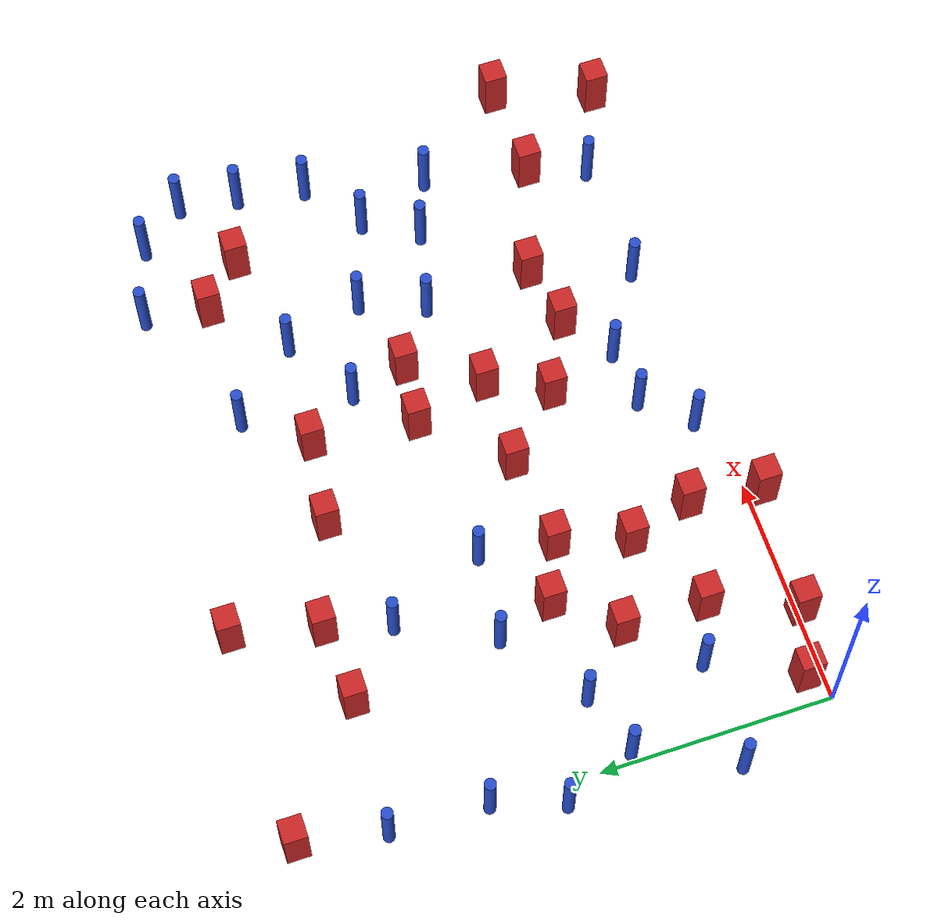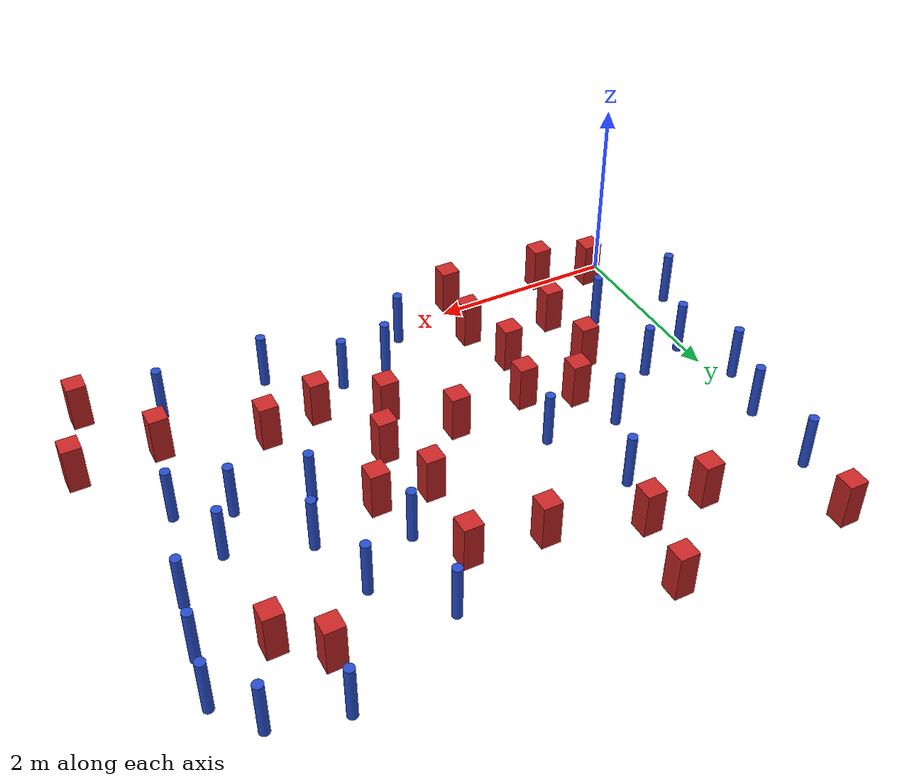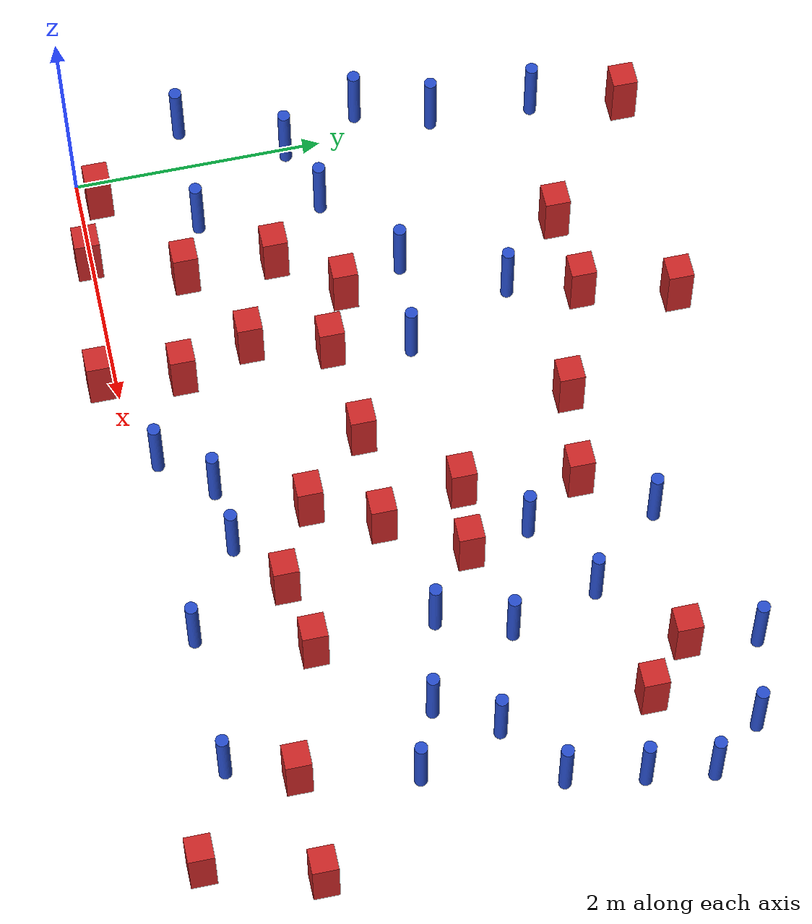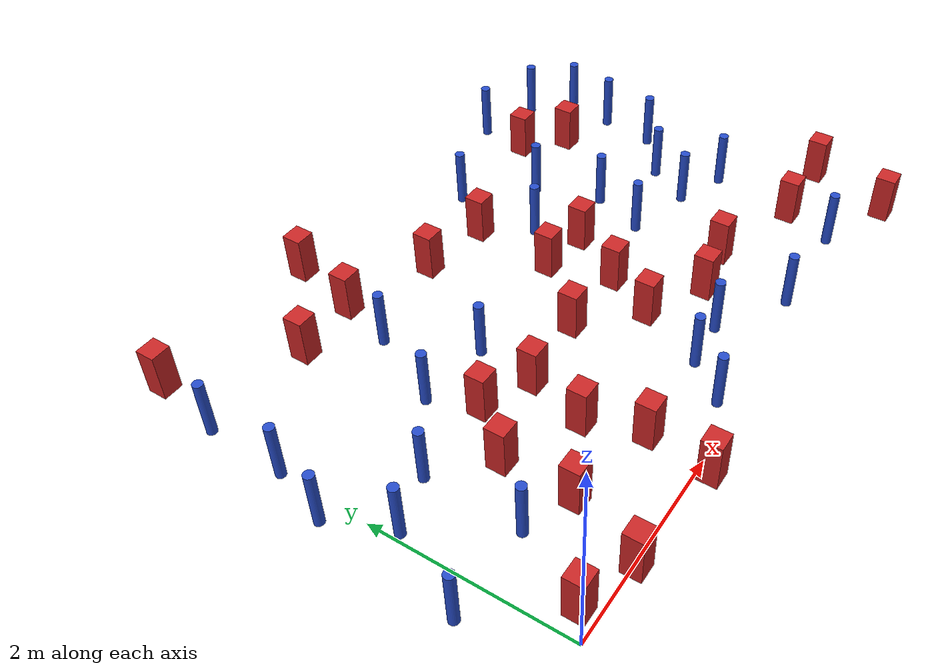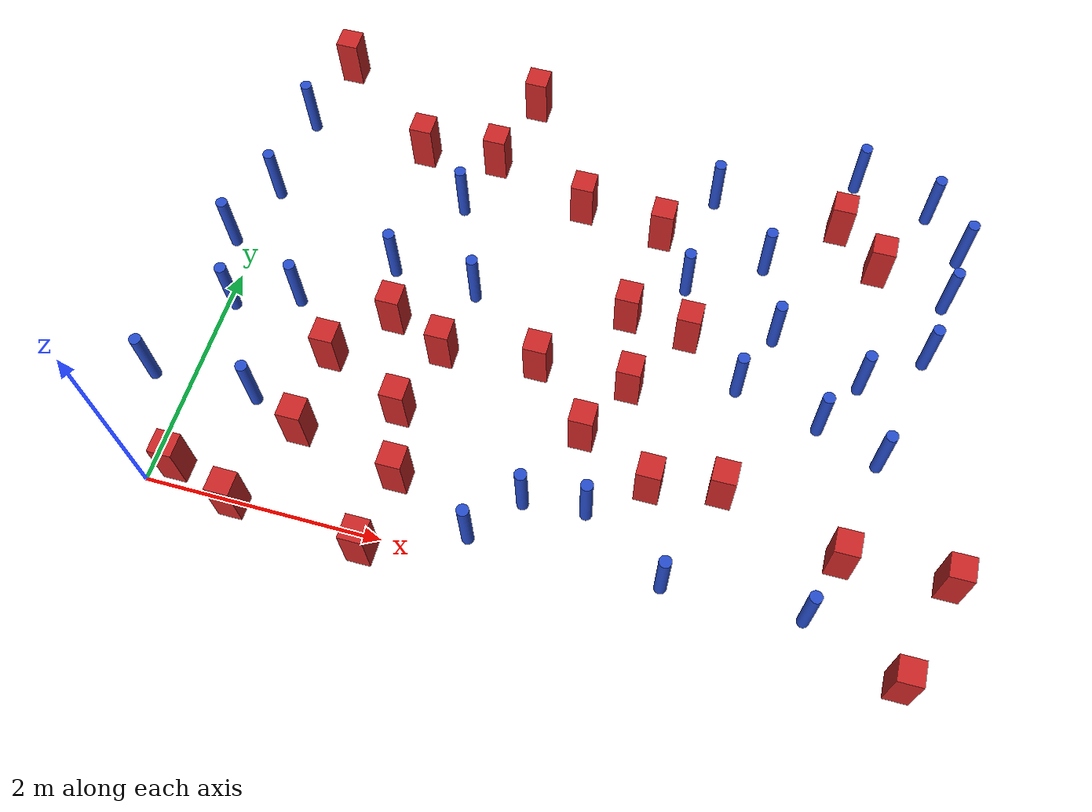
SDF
<sdf version="1.6">
 <model name="dense_59">
  <model name="square_post_obstacle6">
   <static>true</static>
   <pose>2.74779495735 3.42681355464 1.91545236811e-07 -7.35059704564e-06 1.12565212e-07 2.39332434364e-05</pose>
   <link name="link">
    <pose>0 0 0.25 0 -0 0</pose>
    <inertial>
     <mass>100</mass>
     <inertia>
      <ixx>0.166667</ixx>
      <ixy>0</ixy>
      <ixz>0</ixz>
      <iyy>0.166667</iyy>
      <iyz>0</iyz>
      <izz>0.166667</izz>
     </inertia>
    </inertial>
    <collision name="collision"><geometry><box><size>.2 .2 .5</size></box></geometry></collision>
    <visual name="visual">
     <geometry><box><size>.2 .2 .5</size></box></geometry>
     <material>
      <script><name>Gazebo/Red</name><uri>file://media/materials/scripts/gazebo.material</uri></script>
     </material>
    </visual>
   </link>
  </model>
  <model name="square_post_obstacle7">
   <static>true</static>
   <pose>1.96890873145 0.516541553531 1.91545236811e-07 -7.35059704564e-06 1.12565212e-07 2.39332434364e-05</pose>
   <link name="link">
    <pose>0 0 0.25 0 -0 0</pose>
    <inertial>
     <mass>100</mass>
     <inertia>
      <ixx>0.166667</ixx>
      <ixy>0</ixy>
      <ixz>0</ixz>
      <iyy>0.166667</iyy>
      <iyz>0</iyz>
      <izz>0.166667</izz>
     </inertia>
    </inertial>
    <collision name="collision"><geometry><box><size>.2 .2 .5</size></box></geometry></collision>
    <visual name="visual">
     <geometry><box><size>.2 .2 .5</size></box></geometry>
     <material>
      <script><name>Gazebo/Red</name><uri>file://media/materials/scripts/gazebo.material</uri></script>
     </material>
    </visual>
   </link>
  </model>
  <model name="pole_obstacle7">
   <static>true</static>
   <pose>4.42884117087 1.99683691813 7.38925637345e-09 -8.471706928e-08 1.24976765177e-08 -1.74513093012e-07</pose>
   <link name="link">
    <pose>0 0 0.3 0 -0 0</pose>
    <inertial>
     <mass>1</mass>
     <inertia><ixx>0.145833</ixx><ixy>0</ixy><ixz>0</ixz><iyy>0.145833</iyy><iyz>0</iyz><izz>0.125</izz></inertia>
    </inertial>
    <collision name="collision">
     <geometry><cylinder><radius>0.05</radius><length>.6</length></cylinder></geometry>
    </collision>
    <visual name="visual">
     <geometry><cylinder><radius>0.05</radius><length>.6</length></cylinder></geometry>
     <material>
      <script><name>Gazebo/Blue</name><uri>file://media/materials/scripts/gazebo.material</uri></script>
     </material>
    </visual>
   </link>
  </model>
  <model name="pole_obstacle9">
   <static>true</static>
   <pose>1.30406484558 2.3932725286 7.38925637345e-09 -8.47170692799e-08 1.24976765053e-08 -1.74513093017e-07</pose>
   <link name="link">
    <pose>0 0 0.3 0 -0 0</pose>
    <inertial>
     <mass>1</mass>
     <inertia><ixx>0.145833</ixx><ixy>0</ixy><ixz>0</ixz><iyy>0.145833</iyy><iyz>0</iyz><izz>0.125</izz></inertia>
    </inertial>
    <collision name="collision">
     <geometry><cylinder><radius>0.05</radius><length>.6</length></cylinder></geometry>
    </collision>
    <visual name="visual">
     <geometry><cylinder><radius>0.05</radius><length>.6</length></cylinder></geometry>
     <material>
      <script><name>Gazebo/Blue</name><uri>file://media/materials/scripts/gazebo.material</uri></script>
     </material>
    </visual>
   </link>
  </model>
  <model name="square_post_obstacle18">
   <static>true</static>
   <pose>4.48623797648 1.04986090024 1.91545236811e-07 -7.35059704564e-06 1.12565212e-07 2.39332434364e-05</pose>
   <link name="link">
    <pose>0 0 0.25 0 -0 0</pose>
    <inertial>
     <mass>100</mass>
     <inertia>
      <ixx>0.166667</ixx>
      <ixy>0</ixy>
      <ixz>0</ixz>
      <iyy>0.166667</iyy>
      <iyz>0</iyz>
      <izz>0.166667</izz>
     </inertia>
    </inertial>
    <collision name="collision"><geometry><box><size>.2 .2 .5</size></box></geometry></collision>
    <visual name="visual">
     <geometry><box><size>.2 .2 .5</size></box></geometry>
     <material>
      <script><name>Gazebo/Red</name><uri>file://media/materials/scripts/gazebo.material</uri></script>
     </material>
    </visual>
   </link>
  </model>
  <model name="pole_obstacle10">
   <static>true</static>
   <pose>2.98692102486 0.5763629176 7.38925637345e-09 -8.471706928e-08 1.24976765177e-08 -1.74513093012e-07</pose>
   <link name="link">
    <pose>0 0 0.3 0 -0 0</pose>
    <inertial>
     <mass>1</mass>
     <inertia><ixx>0.145833</ixx><ixy>0</ixy><ixz>0</ixz><iyy>0.145833</iyy><iyz>0</iyz><izz>0.125</izz></inertia>
    </inertial>
    <collision name="collision">
     <geometry><cylinder><radius>0.05</radius><length>.6</length></cylinder></geometry>
    </collision>
    <visual name="visual">
     <geometry><cylinder><radius>0.05</radius><length>.6</length></cylinder></geometry>
     <material>
      <script><name>Gazebo/Blue</name><uri>file://media/materials/scripts/gazebo.material</uri></script>
     </material>
    </visual>
   </link>
  </model>
  <model name="square_post_obstacle21">
   <static>true</static>
   <pose>6.04395570483 -0.102435734392 1.91545236811e-07 -7.35059704564e-06 1.12565212e-07 2.39332434364e-05</pose>
   <link name="link">
    <pose>0 0 0.25 0 -0 0</pose>
    <inertial>
     <mass>100</mass>
     <inertia>
      <ixx>0.166667</ixx>
      <ixy>0</ixy>
      <ixz>0</ixz>
      <iyy>0.166667</iyy>
      <iyz>0</iyz>
      <izz>0.166667</izz>
     </inertia>
    </inertial>
    <collision name="collision"><geometry><box><size>.2 .2 .5</size></box></geometry></collision>
    <visual name="visual">
     <geometry><box><size>.2 .2 .5</size></box></geometry>
     <material>
      <script><name>Gazebo/Red</name><uri>file://media/materials/scripts/gazebo.material</uri></script>
     </material>
    </visual>
   </link>
  </model>
  <model name="pole_obstacle19">
   <static>true</static>
   <pose>5.0812405203 4.34473684918 7.38925637345e-09 -8.47170692796e-08 1.24976764786e-08 -1.74513093032e-07</pose>
   <link name="link">
    <pose>0 0 0.3 0 -0 0</pose>
    <inertial>
     <mass>1</mass>
     <inertia><ixx>0.145833</ixx><ixy>0</ixy><ixz>0</ixz><iyy>0.145833</iyy><iyz>0</iyz><izz>0.125</izz></inertia>
    </inertial>
    <collision name="collision">
     <geometry><cylinder><radius>0.05</radius><length>.6</length></cylinder></geometry>
    </collision>
    <visual name="visual">
     <geometry><cylinder><radius>0.05</radius><length>.6</length></cylinder></geometry>
     <material>
      <script><name>Gazebo/Blue</name><uri>file://media/materials/scripts/gazebo.material</uri></script>
     </material>
    </visual>
   </link>
  </model>
  <model name="square_post_obstacle29">
   <static>true</static>
   <pose>1.07501174103 1.42228093594 1.91545236811e-07 -7.35059704564e-06 1.12565212e-07 2.39332434364e-05</pose>
   <link name="link">
    <pose>0 0 0.25 0 -0 0</pose>
    <inertial>
     <mass>100</mass>
     <inertia>
      <ixx>0.166667</ixx>
      <ixy>0</ixy>
      <ixz>0</ixz>
      <iyy>0.166667</iyy>
      <iyz>0</iyz>
      <izz>0.166667</izz>
     </inertia>
    </inertial>
    <collision name="collision"><geometry><box><size>.2 .2 .5</size></box></geometry></collision>
    <visual name="visual">
     <geometry><box><size>.2 .2 .5</size></box></geometry>
     <material>
      <script><name>Gazebo/Red</name><uri>file://media/materials/scripts/gazebo.material</uri></script>
     </material>
    </visual>
   </link>
  </model>
  <model name="square_post_obstacle30">
   <static>true</static>
   <pose>5.47710392444 0.726197041636 1.91545236811e-07 -7.35059704564e-06 1.12565212e-07 2.39332434364e-05</pose>
   <link name="link">
    <pose>0 0 0.25 0 -0 0</pose>
    <inertial>
     <mass>100</mass>
     <inertia>
      <ixx>0.166667</ixx>
      <ixy>0</ixy>
      <ixz>0</ixz>
      <iyy>0.166667</iyy>
      <iyz>0</iyz>
      <izz>0.166667</izz>
     </inertia>
    </inertial>
    <collision name="collision"><geometry><box><size>.2 .2 .5</size></box></geometry></collision>
    <visual name="visual">
     <geometry><box><size>.2 .2 .5</size></box></geometry>
     <material>
      <script><name>Gazebo/Red</name><uri>file://media/materials/scripts/gazebo.material</uri></script>
     </material>
    </visual>
   </link>
  </model>
  <model name="pole_obstacle23">
   <static>true</static>
   <pose>3.81328017638 2.8599224622 7.38925637345e-09 -8.47170692798e-08 1.24976764939e-08 -1.74513093025e-07</pose>
   <link name="link">
    <pose>0 0 0.3 0 -0 0</pose>
    <inertial>
     <mass>1</mass>
     <inertia><ixx>0.145833</ixx><ixy>0</ixy><ixz>0</ixz><iyy>0.145833</iyy><iyz>0</iyz><izz>0.125</izz></inertia>
    </inertial>
    <collision name="collision">
     <geometry><cylinder><radius>0.05</radius><length>.6</length></cylinder></geometry>
    </collision>
    <visual name="visual">
     <geometry><cylinder><radius>0.05</radius><length>.6</length></cylinder></geometry>
     <material>
      <script><name>Gazebo/Blue</name><uri>file://media/materials/scripts/gazebo.material</uri></script>
     </material>
    </visual>
   </link>
  </model>
  <model name="pole_obstacle36">
   <static>true</static>
   <pose>2.65133265014 0.18968282143 7.38925637345e-09 -8.47170692801e-08 1.24976765195e-08 -1.74513093011e-07</pose>
   <link name="link">
    <pose>0 0 0.3 0 -0 0</pose>
    <inertial>
     <mass>1</mass>
     <inertia><ixx>0.145833</ixx><ixy>0</ixy><ixz>0</ixz><iyy>0.145833</iyy><iyz>0</iyz><izz>0.125</izz></inertia>
    </inertial>
    <collision name="collision">
     <geometry><cylinder><radius>0.05</radius><length>.6</length></cylinder></geometry>
    </collision>
    <visual name="visual">
     <geometry><cylinder><radius>0.05</radius><length>.6</length></cylinder></geometry>
     <material>
      <script><name>Gazebo/Blue</name><uri>file://media/materials/scripts/gazebo.material</uri></script>
     </material>
    </visual>
   </link>
  </model>
  <model name="pole_obstacle40">
   <static>true</static>
   <pose>2.06021648572 2.32384527895 7.38925637345e-09 -8.47170692798e-08 1.24976764939e-08 -1.74513093025e-07</pose>
   <link name="link">
    <pose>0 0 0.3 0 -0 0</pose>
    <inertial>
     <mass>1</mass>
     <inertia><ixx>0.145833</ixx><ixy>0</ixy><ixz>0</ixz><iyy>0.145833</iyy><iyz>0</iyz><izz>0.125</izz></inertia>
    </inertial>
    <collision name="collision">
     <geometry><cylinder><radius>0.05</radius><length>.6</length></cylinder></geometry>
    </collision>
    <visual name="visual">
     <geometry><cylinder><radius>0.05</radius><length>.6</length></cylinder></geometry>
     <material>
      <script><name>Gazebo/Blue</name><uri>file://media/materials/scripts/gazebo.material</uri></script>
     </material>
    </visual>
   </link>
  </model>
  <model name="square_post_obstacle50">
   <static>true</static>
   <pose>0.781725389976 -0.02594043501 1.91545236811e-07 -7.35059704564e-06 1.12565212e-07 2.39332434364e-05</pose>
   <link name="link">
    <pose>0 0 0.25 0 -0 0</pose>
    <inertial>
     <mass>100</mass>
     <inertia>
      <ixx>0.166667</ixx>
      <ixy>0</ixy>
      <ixz>0</ixz>
      <iyy>0.166667</iyy>
      <iyz>0</iyz>
      <izz>0.166667</izz>
     </inertia>
    </inertial>
    <collision name="collision"><geometry><box><size>.2 .2 .5</size></box></geometry></collision>
    <visual name="visual">
     <geometry><box><size>.2 .2 .5</size></box></geometry>
     <material>
      <script><name>Gazebo/Red</name><uri>file://media/materials/scripts/gazebo.material</uri></script>
     </material>
    </visual>
   </link>
  </model>
  <model name="pole_obstacle52">
   <static>true</static>
   <pose>5.65788533901 1.61920491972 7.38925637345e-09 -8.471706928e-08 1.24976765134e-08 -1.74513093015e-07</pose>
   <link name="link">
    <pose>0 0 0.3 0 -0 0</pose>
    <inertial>
     <mass>1</mass>
     <inertia><ixx>0.145833</ixx><ixy>0</ixy><ixz>0</ixz><iyy>0.145833</iyy><iyz>0</iyz><izz>0.125</izz></inertia>
    </inertial>
    <collision name="collision">
     <geometry><cylinder><radius>0.05</radius><length>.6</length></cylinder></geometry>
    </collision>
    <visual name="visual">
     <geometry><cylinder><radius>0.05</radius><length>.6</length></cylinder></geometry>
     <material>
      <script><name>Gazebo/Blue</name><uri>file://media/materials/scripts/gazebo.material</uri></script>
     </material>
    </visual>
   </link>
  </model>
  <model name="pole_obstacle53">
   <static>true</static>
   <pose>0.590451067668 0.897449104899 7.38925637345e-09 -8.47170692799e-08 1.24976765008e-08 -1.7451309302e-07</pose>
   <link name="link">
    <pose>0 0 0.3 0 -0 0</pose>
    <inertial>
     <mass>1</mass>
     <inertia><ixx>0.145833</ixx><ixy>0</ixy><ixz>0</ixz><iyy>0.145833</iyy><iyz>0</iyz><izz>0.125</izz></inertia>
    </inertial>
    <collision name="collision">
     <geometry><cylinder><radius>0.05</radius><length>.6</length></cylinder></geometry>
    </collision>
    <visual name="visual">
     <geometry><cylinder><radius>0.05</radius><length>.6</length></cylinder></geometry>
     <material>
      <script><name>Gazebo/Blue</name><uri>file://media/materials/scripts/gazebo.material</uri></script>
     </material>
    </visual>
   </link>
  </model>
  <model name="square_post_obstacle60">
   <static>true</static>
   <pose>3.56521192778 1.76793558898 1.91545236811e-07 -7.35059704564e-06 1.12565212e-07 2.39332434364e-05</pose>
   <link name="link">
    <pose>0 0 0.25 0 -0 0</pose>
    <inertial>
     <mass>100</mass>
     <inertia>
      <ixx>0.166667</ixx>
      <ixy>0</ixy>
      <ixz>0</ixz>
      <iyy>0.166667</iyy>
      <iyz>0</iyz>
      <izz>0.166667</izz>
     </inertia>
    </inertial>
    <collision name="collision"><geometry><box><size>.2 .2 .5</size></box></geometry></collision>
    <visual name="visual">
     <geometry><box><size>.2 .2 .5</size></box></geometry>
     <material>
      <script><name>Gazebo/Red</name><uri>file://media/materials/scripts/gazebo.material</uri></script>
     </material>
    </visual>
   </link>
  </model>
  <model name="square_post_obstacle73">
   <static>true</static>
   <pose>2.7805694358 1.77309273545 1.91545236811e-07 -7.35059704564e-06 1.12565212e-07 2.39332434364e-05</pose>
   <link name="link">
    <pose>0 0 0.25 0 -0 0</pose>
    <inertial>
     <mass>100</mass>
     <inertia>
      <ixx>0.166667</ixx>
      <ixy>0</ixy>
      <ixz>0</ixz>
      <iyy>0.166667</iyy>
      <iyz>0</iyz>
      <izz>0.166667</izz>
     </inertia>
    </inertial>
    <collision name="collision"><geometry><box><size>.2 .2 .5</size></box></geometry></collision>
    <visual name="visual">
     <geometry><box><size>.2 .2 .5</size></box></geometry>
     <material>
      <script><name>Gazebo/Red</name><uri>file://media/materials/scripts/gazebo.material</uri></script>
     </material>
    </visual>
   </link>
  </model>
  <model name="pole_obstacle69">
   <static>true</static>
   <pose>4.64017804551 2.5516675536 7.38925637345e-09 -8.47170692798e-08 1.24976764937e-08 -1.74513093023e-07</pose>
   <link name="link">
    <pose>0 0 0.3 0 -0 0</pose>
    <inertial>
     <mass>1</mass>
     <inertia><ixx>0.145833</ixx><ixy>0</ixy><ixz>0</ixz><iyy>0.145833</iyy><iyz>0</iyz><izz>0.125</izz></inertia>
    </inertial>
    <collision name="collision">
     <geometry><cylinder><radius>0.05</radius><length>.6</length></cylinder></geometry>
    </collision>
    <visual name="visual">
     <geometry><cylinder><radius>0.05</radius><length>.6</length></cylinder></geometry>
     <material>
      <script><name>Gazebo/Blue</name><uri>file://media/materials/scripts/gazebo.material</uri></script>
     </material>
    </visual>
   </link>
  </model>
  <model name="pole_obstacle75">
   <static>true</static>
   <pose>5.13959863347 1.82079990731 7.38925637345e-09 -8.471706928e-08 1.24976765134e-08 -1.74513093015e-07</pose>
   <link name="link">
    <pose>0 0 0.3 0 -0 0</pose>
    <inertial>
     <mass>1</mass>
     <inertia><ixx>0.145833</ixx><ixy>0</ixy><ixz>0</ixz><iyy>0.145833</iyy><iyz>0</iyz><izz>0.125</izz></inertia>
    </inertial>
    <collision name="collision">
     <geometry><cylinder><radius>0.05</radius><length>.6</length></cylinder></geometry>
    </collision>
    <visual name="visual">
     <geometry><cylinder><radius>0.05</radius><length>.6</length></cylinder></geometry>
     <material>
      <script><name>Gazebo/Blue</name><uri>file://media/materials/scripts/gazebo.material</uri></script>
     </material>
    </visual>
   </link>
  </model>
  <model name="pole_obstacle79">
   <static>true</static>
   <pose>5.90344295679 2.65675222108 7.38925637345e-09 -8.47170692798e-08 1.24976764937e-08 -1.74513093023e-07</pose>
   <link name="link">
    <pose>0 0 0.3 0 -0 0</pose>
    <inertial>
     <mass>1</mass>
     <inertia><ixx>0.145833</ixx><ixy>0</ixy><ixz>0</ixz><iyy>0.145833</iyy><iyz>0</iyz><izz>0.125</izz></inertia>
    </inertial>
    <collision name="collision">
     <geometry><cylinder><radius>0.05</radius><length>.6</length></cylinder></geometry>
    </collision>
    <visual name="visual">
     <geometry><cylinder><radius>0.05</radius><length>.6</length></cylinder></geometry>
     <material>
      <script><name>Gazebo/Blue</name><uri>file://media/materials/scripts/gazebo.material</uri></script>
     </material>
    </visual>
   </link>
  </model>
  <model name="square_post_obstacle84">
   <static>true</static>
   <pose>3.30220605292 1.25213418225 1.91545236811e-07 -7.35059704564e-06 1.12565212e-07 2.39332434364e-05</pose>
   <link name="link">
    <pose>0 0 0.25 0 -0 0</pose>
    <inertial>
     <mass>100</mass>
     <inertia>
      <ixx>0.166667</ixx>
      <ixy>0</ixy>
      <ixz>0</ixz>
      <iyy>0.166667</iyy>
      <iyz>0</iyz>
      <izz>0.166667</izz>
     </inertia>
    </inertial>
    <collision name="collision"><geometry><box><size>.2 .2 .5</size></box></geometry></collision>
    <visual name="visual">
     <geometry><box><size>.2 .2 .5</size></box></geometry>
     <material>
      <script><name>Gazebo/Red</name><uri>file://media/materials/scripts/gazebo.material</uri></script>
     </material>
    </visual>
   </link>
  </model>
  <model name="pole_obstacle98">
   <static>true</static>
   <pose>-0.325933430519 0.903424053404 7.38925637345e-09 -8.47170692799e-08 1.24976765033e-08 -1.74513093019e-07</pose>
   <link name="link">
    <pose>0 0 0.3 0 -0 0</pose>
    <inertial>
     <mass>1</mass>
     <inertia><ixx>0.145833</ixx><ixy>0</ixy><ixz>0</ixz><iyy>0.145833</iyy><iyz>0</iyz><izz>0.125</izz></inertia>
    </inertial>
    <collision name="collision">
     <geometry><cylinder><radius>0.05</radius><length>.6</length></cylinder></geometry>
    </collision>
    <visual name="visual">
     <geometry><cylinder><radius>0.05</radius><length>.6</length></cylinder></geometry>
     <material>
      <script><name>Gazebo/Blue</name><uri>file://media/materials/scripts/gazebo.material</uri></script>
     </material>
    </visual>
   </link>
  </model>
  <model name="pole_obstacle100">
   <static>true</static>
   <pose>3.87284101218 3.83542529778 7.38925637345e-09 -8.47170692798e-08 1.24976764939e-08 -1.74513093025e-07</pose>
   <link name="link">
    <pose>0 0 0.3 0 -0 0</pose>
    <inertial>
     <mass>1</mass>
     <inertia><ixx>0.145833</ixx><ixy>0</ixy><ixz>0</ixz><iyy>0.145833</iyy><iyz>0</iyz><izz>0.125</izz></inertia>
    </inertial>
    <collision name="collision">
     <geometry><cylinder><radius>0.05</radius><length>.6</length></cylinder></geometry>
    </collision>
    <visual name="visual">
     <geometry><cylinder><radius>0.05</radius><length>.6</length></cylinder></geometry>
     <material>
      <script><name>Gazebo/Blue</name><uri>file://media/materials/scripts/gazebo.material</uri></script>
     </material>
    </visual>
   </link>
  </model>
  <model name="square_post_obstacle92">
   <static>true</static>
   <pose>1.85218060831 3.73177177197 1.91545236811e-07 -7.35059704564e-06 1.12565212e-07 2.39332434364e-05</pose>
   <link name="link">
    <pose>0 0 0.25 0 -0 0</pose>
    <inertial>
     <mass>100</mass>
     <inertia>
      <ixx>0.166667</ixx>
      <ixy>0</ixy>
      <ixz>0</ixz>
      <iyy>0.166667</iyy>
      <iyz>0</iyz>
      <izz>0.166667</izz>
     </inertia>
    </inertial>
    <collision name="collision"><geometry><box><size>.2 .2 .5</size></box></geometry></collision>
    <visual name="visual">
     <geometry><box><size>.2 .2 .5</size></box></geometry>
     <material>
      <script><name>Gazebo/Red</name><uri>file://media/materials/scripts/gazebo.material</uri></script>
     </material>
    </visual>
   </link>
  </model>
  <model name="pole_obstacle108">
   <static>true</static>
   <pose>0.60476029904 1.88756414676 7.38925637345e-09 -8.47170692799e-08 1.24976765033e-08 -1.7451309302e-07</pose>
   <link name="link">
    <pose>0 0 0.3 0 -0 0</pose>
    <inertial>
     <mass>1</mass>
     <inertia><ixx>0.145833</ixx><ixy>0</ixy><ixz>0</ixz><iyy>0.145833</iyy><iyz>0</iyz><izz>0.125</izz></inertia>
    </inertial>
    <collision name="collision">
     <geometry><cylinder><radius>0.05</radius><length>.6</length></cylinder></geometry>
    </collision>
    <visual name="visual">
     <geometry><cylinder><radius>0.05</radius><length>.6</length></cylinder></geometry>
     <material>
      <script><name>Gazebo/Blue</name><uri>file://media/materials/scripts/gazebo.material</uri></script>
     </material>
    </visual>
   </link>
  </model>
  <model name="square_post_obstacle96">
   <static>true</static>
   <pose>5.00298688856 3.79150272132 1.91545236811e-07 -7.35059704564e-06 1.12565212e-07 2.39332434364e-05</pose>
   <link name="link">
    <pose>0 0 0.25 0 -0 0</pose>
    <inertial>
     <mass>100</mass>
     <inertia>
      <ixx>0.166667</ixx>
      <ixy>0</ixy>
      <ixz>0</ixz>
      <iyy>0.166667</iyy>
      <iyz>0</iyz>
      <izz>0.166667</izz>
     </inertia>
    </inertial>
    <collision name="collision"><geometry><box><size>.2 .2 .5</size></box></geometry></collision>
    <visual name="visual">
     <geometry><box><size>.2 .2 .5</size></box></geometry>
     <material>
      <script><name>Gazebo/Red</name><uri>file://media/materials/scripts/gazebo.material</uri></script>
     </material>
    </visual>
   </link>
  </model>
  <model name="square_post_obstacle101">
   <static>true</static>
   <pose>0.230453771746 0.156098682803 1.91545236811e-07 -7.35059704564e-06 1.12565212e-07 2.39332434364e-05</pose>
   <link name="link">
    <pose>0 0 0.25 0 -0 0</pose>
    <inertial>
     <mass>100</mass>
     <inertia>
      <ixx>0.166667</ixx>
      <ixy>0</ixy>
      <ixz>0</ixz>
      <iyy>0.166667</iyy>
      <iyz>0</iyz>
      <izz>0.166667</izz>
     </inertia>
    </inertial>
    <collision name="collision"><geometry><box><size>.2 .2 .5</size></box></geometry></collision>
    <visual name="visual">
     <geometry><box><size>.2 .2 .5</size></box></geometry>
     <material>
      <script><name>Gazebo/Red</name><uri>file://media/materials/scripts/gazebo.material</uri></script>
     </material>
    </visual>
   </link>
  </model>
  <model name="pole_obstacle118">
   <static>true</static>
   <pose>0.0646321608904 1.71178864233 7.38925637345e-09 -8.471706928e-08 1.24976765024e-08 -1.7451309302e-07</pose>
   <link name="link">
    <pose>0 0 0.3 0 -0 0</pose>
    <inertial>
     <mass>1</mass>
     <inertia><ixx>0.145833</ixx><ixy>0</ixy><ixz>0</ixz><iyy>0.145833</iyy><iyz>0</iyz><izz>0.125</izz></inertia>
    </inertial>
    <collision name="collision">
     <geometry><cylinder><radius>0.05</radius><length>.6</length></cylinder></geometry>
    </collision>
    <visual name="visual">
     <geometry><cylinder><radius>0.05</radius><length>.6</length></cylinder></geometry>
     <material>
      <script><name>Gazebo/Blue</name><uri>file://media/materials/scripts/gazebo.material</uri></script>
     </material>
    </visual>
   </link>
  </model>
  <model name="square_post_obstacle111">
   <static>true</static>
   <pose>3.49053614567 3.32802907171 1.91545236811e-07 -7.35059704564e-06 1.12565212e-07 2.39332434364e-05</pose>
   <link name="link">
    <pose>0 0 0.25 0 -0 0</pose>
    <inertial>
     <mass>100</mass>
     <inertia>
      <ixx>0.166667</ixx>
      <ixy>0</ixy>
      <ixz>0</ixz>
      <iyy>0.166667</iyy>
      <iyz>0</iyz>
      <izz>0.166667</izz>
     </inertia>
    </inertial>
    <collision name="collision"><geometry><box><size>.2 .2 .5</size></box></geometry></collision>
    <visual name="visual">
     <geometry><box><size>.2 .2 .5</size></box></geometry>
     <material>
      <script><name>Gazebo/Red</name><uri>file://media/materials/scripts/gazebo.material</uri></script>
     </material>
    </visual>
   </link>
  </model>
  <model name="pole_obstacle126">
   <static>true</static>
   <pose>-0.185885994054 2.33326420951 7.38925637345e-09 -8.471706928e-08 1.2497676511e-08 -1.74513093013e-07</pose>
   <link name="link">
    <pose>0 0 0.3 0 -0 0</pose>
    <inertial>
     <mass>1</mass>
     <inertia><ixx>0.145833</ixx><ixy>0</ixy><ixz>0</ixz><iyy>0.145833</iyy><iyz>0</iyz><izz>0.125</izz></inertia>
    </inertial>
    <collision name="collision">
     <geometry><cylinder><radius>0.05</radius><length>.6</length></cylinder></geometry>
    </collision>
    <visual name="visual">
     <geometry><cylinder><radius>0.05</radius><length>.6</length></cylinder></geometry>
     <material>
      <script><name>Gazebo/Blue</name><uri>file://media/materials/scripts/gazebo.material</uri></script>
     </material>
    </visual>
   </link>
  </model>
  <model name="pole_obstacle132">
   <static>true</static>
   <pose>5.40926353167 2.27947221301 7.38925637345e-09 -8.47170692798e-08 1.24976764937e-08 -1.74513093023e-07</pose>
   <link name="link">
    <pose>0 0 0.3 0 -0 0</pose>
    <inertial>
     <mass>1</mass>
     <inertia><ixx>0.145833</ixx><ixy>0</ixy><ixz>0</ixz><iyy>0.145833</iyy><iyz>0</iyz><izz>0.125</izz></inertia>
    </inertial>
    <collision name="collision">
     <geometry><cylinder><radius>0.05</radius><length>.6</length></cylinder></geometry>
    </collision>
    <visual name="visual">
     <geometry><cylinder><radius>0.05</radius><length>.6</length></cylinder></geometry>
     <material>
      <script><name>Gazebo/Blue</name><uri>file://media/materials/scripts/gazebo.material</uri></script>
     </material>
    </visual>
   </link>
  </model>
  <model name="square_post_obstacle126">
   <static>true</static>
   <pose>5.38953754324 3.43928572763 1.91545236811e-07 -7.35059704564e-06 1.12565212e-07 2.39332434364e-05</pose>
   <link name="link">
    <pose>0 0 0.25 0 -0 0</pose>
    <inertial>
     <mass>100</mass>
     <inertia>
      <ixx>0.166667</ixx>
      <ixy>0</ixy>
      <ixz>0</ixz>
      <iyy>0.166667</iyy>
      <iyz>0</iyz>
      <izz>0.166667</izz>
     </inertia>
    </inertial>
    <collision name="collision"><geometry><box><size>.2 .2 .5</size></box></geometry></collision>
    <visual name="visual">
     <geometry><box><size>.2 .2 .5</size></box></geometry>
     <material>
      <script><name>Gazebo/Red</name><uri>file://media/materials/scripts/gazebo.material</uri></script>
     </material>
    </visual>
   </link>
  </model>
  <model name="pole_obstacle143">
   <static>true</static>
   <pose>0.00714552020065 2.92301817739 7.38925637345e-09 -8.47170692792e-08 1.24976764387e-08 -1.74513093042e-07</pose>
   <link name="link">
    <pose>0 0 0.3 0 -0 0</pose>
    <inertial>
     <mass>1</mass>
     <inertia><ixx>0.145833</ixx><ixy>0</ixy><ixz>0</ixz><iyy>0.145833</iyy><iyz>0</iyz><izz>0.125</izz></inertia>
    </inertial>
    <collision name="collision">
     <geometry><cylinder><radius>0.05</radius><length>.6</length></cylinder></geometry>
    </collision>
    <visual name="visual">
     <geometry><cylinder><radius>0.05</radius><length>.6</length></cylinder></geometry>
     <material>
      <script><name>Gazebo/Blue</name><uri>file://media/materials/scripts/gazebo.material</uri></script>
     </material>
    </visual>
   </link>
  </model>
  <model name="pole_obstacle144">
   <static>true</static>
   <pose>6.00311860051 3.24856825847 7.38925637345e-09 -8.47170692798e-08 1.24976764937e-08 -1.74513093023e-07</pose>
   <link name="link">
    <pose>0 0 0.3 0 -0 0</pose>
    <inertial>
     <mass>1</mass>
     <inertia><ixx>0.145833</ixx><ixy>0</ixy><ixz>0</ixz><iyy>0.145833</iyy><iyz>0</iyz><izz>0.125</izz></inertia>
    </inertial>
    <collision name="collision">
     <geometry><cylinder><radius>0.05</radius><length>.6</length></cylinder></geometry>
    </collision>
    <visual name="visual">
     <geometry><cylinder><radius>0.05</radius><length>.6</length></cylinder></geometry>
     <material>
      <script><name>Gazebo/Blue</name><uri>file://media/materials/scripts/gazebo.material</uri></script>
     </material>
    </visual>
   </link>
  </model>
  <model name="pole_obstacle146">
   <static>true</static>
   <pose>4.43510246325 3.24364254026 7.38925637345e-09 -8.47170692798e-08 1.24976764937e-08 -1.74513093023e-07</pose>
   <link name="link">
    <pose>0 0 0.3 0 -0 0</pose>
    <inertial>
     <mass>1</mass>
     <inertia><ixx>0.145833</ixx><ixy>0</ixy><ixz>0</ixz><iyy>0.145833</iyy><iyz>0</iyz><izz>0.125</izz></inertia>
    </inertial>
    <collision name="collision">
     <geometry><cylinder><radius>0.05</radius><length>.6</length></cylinder></geometry>
    </collision>
    <visual name="visual">
     <geometry><cylinder><radius>0.05</radius><length>.6</length></cylinder></geometry>
     <material>
      <script><name>Gazebo/Blue</name><uri>file://media/materials/scripts/gazebo.material</uri></script>
     </material>
    </visual>
   </link>
  </model>
  <model name="pole_obstacle150">
   <static>true</static>
   <pose>1.69088032658 3.17839503263 7.38925637345e-09 -8.47170692799e-08 1.24976765053e-08 -1.74513093017e-07</pose>
   <link name="link">
    <pose>0 0 0.3 0 -0 0</pose>
    <inertial>
     <mass>1</mass>
     <inertia><ixx>0.145833</ixx><ixy>0</ixy><ixz>0</ixz><iyy>0.145833</iyy><iyz>0</iyz><izz>0.125</izz></inertia>
    </inertial>
    <collision name="collision">
     <geometry><cylinder><radius>0.05</radius><length>.6</length></cylinder></geometry>
    </collision>
    <visual name="visual">
     <geometry><cylinder><radius>0.05</radius><length>.6</length></cylinder></geometry>
     <material>
      <script><name>Gazebo/Blue</name><uri>file://media/materials/scripts/gazebo.material</uri></script>
     </material>
    </visual>
   </link>
  </model>
  <model name="square_post_obstacle147">
   <static>true</static>
   <pose>3.92009606219 0.944382096751 1.91545236811e-07 -7.35059704564e-06 1.12565212e-07 2.39332434364e-05</pose>
   <link name="link">
    <pose>0 0 0.25 0 -0 0</pose>
    <inertial>
     <mass>100</mass>
     <inertia>
      <ixx>0.166667</ixx>
      <ixy>0</ixy>
      <ixz>0</ixz>
      <iyy>0.166667</iyy>
      <iyz>0</iyz>
      <izz>0.166667</izz>
     </inertia>
    </inertial>
    <collision name="collision"><geometry><box><size>.2 .2 .5</size></box></geometry></collision>
    <visual name="visual">
     <geometry><box><size>.2 .2 .5</size></box></geometry>
     <material>
      <script><name>Gazebo/Red</name><uri>file://media/materials/scripts/gazebo.material</uri></script>
     </material>
    </visual>
   </link>
  </model>
  <model name="square_post_obstacle153">
   <static>true</static>
   <pose>1.79583117169 1.07931875023 1.91545236811e-07 -7.35059704564e-06 1.12565212e-07 2.39332434364e-05</pose>
   <link name="link">
    <pose>0 0 0.25 0 -0 0</pose>
    <inertial>
     <mass>100</mass>
     <inertia>
      <ixx>0.166667</ixx>
      <ixy>0</ixy>
      <ixz>0</ixz>
      <iyy>0.166667</iyy>
      <iyz>0</iyz>
      <izz>0.166667</izz>
     </inertia>
    </inertial>
    <collision name="collision"><geometry><box><size>.2 .2 .5</size></box></geometry></collision>
    <visual name="visual">
     <geometry><box><size>.2 .2 .5</size></box></geometry>
     <material>
      <script><name>Gazebo/Red</name><uri>file://media/materials/scripts/gazebo.material</uri></script>
     </material>
    </visual>
   </link>
  </model>
  <model name="pole_obstacle161">
   <static>true</static>
   <pose>3.49401346607 0.621532051045 7.38925637345e-09 -8.471706928e-08 1.24976765177e-08 -1.74513093012e-07</pose>
   <link name="link">
    <pose>0 0 0.3 0 -0 0</pose>
    <inertial>
     <mass>1</mass>
     <inertia><ixx>0.145833</ixx><ixy>0</ixy><ixz>0</ixz><iyy>0.145833</iyy><iyz>0</iyz><izz>0.125</izz></inertia>
    </inertial>
    <collision name="collision">
     <geometry><cylinder><radius>0.05</radius><length>.6</length></cylinder></geometry>
    </collision>
    <visual name="visual">
     <geometry><cylinder><radius>0.05</radius><length>.6</length></cylinder></geometry>
     <material>
      <script><name>Gazebo/Blue</name><uri>file://media/materials/scripts/gazebo.material</uri></script>
     </material>
    </visual>
   </link>
  </model>
  <model name="pole_obstacle163">
   <static>true</static>
   <pose>6.07373695527 3.76064355327 7.38925637345e-09 -8.47170692798e-08 1.24976764937e-08 -1.74513093023e-07</pose>
   <link name="link">
    <pose>0 0 0.3 0 -0 0</pose>
    <inertial>
     <mass>1</mass>
     <inertia><ixx>0.145833</ixx><ixy>0</ixy><ixz>0</ixz><iyy>0.145833</iyy><iyz>0</iyz><izz>0.125</izz></inertia>
    </inertial>
    <collision name="collision">
     <geometry><cylinder><radius>0.05</radius><length>.6</length></cylinder></geometry>
    </collision>
    <visual name="visual">
     <geometry><cylinder><radius>0.05</radius><length>.6</length></cylinder></geometry>
     <material>
      <script><name>Gazebo/Blue</name><uri>file://media/materials/scripts/gazebo.material</uri></script>
     </material>
    </visual>
   </link>
  </model>
  <model name="square_post_obstacle156">
   <static>true</static>
   <pose>6.31699439927 0.753577580558 1.91545236811e-07 -7.35059704564e-06 1.12565212e-07 2.39332434364e-05</pose>
   <link name="link">
    <pose>0 0 0.25 0 -0 0</pose>
    <inertial>
     <mass>100</mass>
     <inertia>
      <ixx>0.166667</ixx>
      <ixy>0</ixy>
      <ixz>0</ixz>
      <iyy>0.166667</iyy>
      <iyz>0</iyz>
      <izz>0.166667</izz>
     </inertia>
    </inertial>
    <collision name="collision"><geometry><box><size>.2 .2 .5</size></box></geometry></collision>
    <visual name="visual">
     <geometry><box><size>.2 .2 .5</size></box></geometry>
     <material>
      <script><name>Gazebo/Red</name><uri>file://media/materials/scripts/gazebo.material</uri></script>
     </material>
    </visual>
   </link>
  </model>
  <model name="square_post_obstacle163">
   <static>true</static>
   <pose>1.1763178697 3.68082974101 1.91545236811e-07 -7.35059704564e-06 1.12565212e-07 2.39332434364e-05</pose>
   <link name="link">
    <pose>0 0 0.25 0 -0 0</pose>
    <inertial>
     <mass>100</mass>
     <inertia>
      <ixx>0.166667</ixx>
      <ixy>0</ixy>
      <ixz>0</ixz>
      <iyy>0.166667</iyy>
      <iyz>0</iyz>
      <izz>0.166667</izz>
     </inertia>
    </inertial>
    <collision name="collision"><geometry><box><size>.2 .2 .5</size></box></geometry></collision>
    <visual name="visual">
     <geometry><box><size>.2 .2 .5</size></box></geometry>
     <material>
      <script><name>Gazebo/Red</name><uri>file://media/materials/scripts/gazebo.material</uri></script>
     </material>
    </visual>
   </link>
  </model>
  <model name="pole_obstacle183">
   <static>true</static>
   <pose>5.75478978546 4.1616096521 7.38925637345e-09 -8.47170692796e-08 1.24976764786e-08 -1.74513093032e-07</pose>
   <link name="link">
    <pose>0 0 0.3 0 -0 0</pose>
    <inertial>
     <mass>1</mass>
     <inertia><ixx>0.145833</ixx><ixy>0</ixy><ixz>0</ixz><iyy>0.145833</iyy><iyz>0</iyz><izz>0.125</izz></inertia>
    </inertial>
    <collision name="collision">
     <geometry><cylinder><radius>0.05</radius><length>.6</length></cylinder></geometry>
    </collision>
    <visual name="visual">
     <geometry><cylinder><radius>0.05</radius><length>.6</length></cylinder></geometry>
     <material>
      <script><name>Gazebo/Blue</name><uri>file://media/materials/scripts/gazebo.material</uri></script>
     </material>
    </visual>
   </link>
  </model>
  <model name="square_post_obstacle173">
   <static>true</static>
   <pose>1.0704236949 0.705001371182 1.91545236811e-07 -7.35059704564e-06 1.12565212e-07 2.39332434364e-05</pose>
   <link name="link">
    <pose>0 0 0.25 0 -0 0</pose>
    <inertial>
     <mass>100</mass>
     <inertia>
      <ixx>0.166667</ixx>
      <ixy>0</ixy>
      <ixz>0</ixz>
      <iyy>0.166667</iyy>
      <iyz>0</iyz>
      <izz>0.166667</izz>
     </inertia>
    </inertial>
    <collision name="collision"><geometry><box><size>.2 .2 .5</size></box></geometry></collision>
    <visual name="visual">
     <geometry><box><size>.2 .2 .5</size></box></geometry>
     <material>
      <script><name>Gazebo/Red</name><uri>file://media/materials/scripts/gazebo.material</uri></script>
     </material>
    </visual>
   </link>
  </model>
  <model name="square_post_obstacle176">
   <static>true</static>
   <pose>0.184887308028 4.47112171608 1.91545236811e-07 -7.35059704564e-06 1.12565212e-07 2.39332434364e-05</pose>
   <link name="link">
    <pose>0 0 0.25 0 -0 0</pose>
    <inertial>
     <mass>100</mass>
     <inertia>
      <ixx>0.166667</ixx>
      <ixy>0</ixy>
      <ixz>0</ixz>
      <iyy>0.166667</iyy>
      <iyz>0</iyz>
      <izz>0.166667</izz>
     </inertia>
    </inertial>
    <collision name="collision"><geometry><box><size>.2 .2 .5</size></box></geometry></collision>
    <visual name="visual">
     <geometry><box><size>.2 .2 .5</size></box></geometry>
     <material>
      <script><name>Gazebo/Red</name><uri>file://media/materials/scripts/gazebo.material</uri></script>
     </material>
    </visual>
   </link>
  </model>
  <model name="square_post_obstacle177">
   <static>true</static>
   <pose>3.39415489065 2.42739086401 1.91545236811e-07 -7.35059704564e-06 1.12565212e-07 2.39332434364e-05</pose>
   <link name="link">
    <pose>0 0 0.25 0 -0 0</pose>
    <inertial>
     <mass>100</mass>
     <inertia>
      <ixx>0.166667</ixx>
      <ixy>0</ixy>
      <ixz>0</ixz>
      <iyy>0.166667</iyy>
      <iyz>0</iyz>
      <izz>0.166667</izz>
     </inertia>
    </inertial>
    <collision name="collision"><geometry><box><size>.2 .2 .5</size></box></geometry></collision>
    <visual name="visual">
     <geometry><box><size>.2 .2 .5</size></box></geometry>
     <material>
      <script><name>Gazebo/Red</name><uri>file://media/materials/scripts/gazebo.material</uri></script>
     </material>
    </visual>
   </link>
  </model>
  <model name="square_post_obstacle182">
   <static>true</static>
   <pose>1.97186080157 1.69371912852 1.91545236811e-07 -7.35059704564e-06 1.12565212e-07 2.39332434364e-05</pose>
   <link name="link">
    <pose>0 0 0.25 0 -0 0</pose>
    <inertial>
     <mass>100</mass>
     <inertia>
      <ixx>0.166667</ixx>
      <ixy>0</ixy>
      <ixz>0</ixz>
      <iyy>0.166667</iyy>
      <iyz>0</iyz>
      <izz>0.166667</izz>
     </inertia>
    </inertial>
    <collision name="collision"><geometry><box><size>.2 .2 .5</size></box></geometry></collision>
    <visual name="visual">
     <geometry><box><size>.2 .2 .5</size></box></geometry>
     <material>
      <script><name>Gazebo/Red</name><uri>file://media/materials/scripts/gazebo.material</uri></script>
     </material>
    </visual>
   </link>
  </model>
  <model name="square_post_obstacle184">
   <static>true</static>
   <pose>1.89184069523 -0.124675895338 1.91545236811e-07 -7.35059704564e-06 1.12565212e-07 2.39332434364e-05</pose>
   <link name="link">
    <pose>0 0 0.25 0 -0 0</pose>
    <inertial>
     <mass>100</mass>
     <inertia>
      <ixx>0.166667</ixx>
      <ixy>0</ixy>
      <ixz>0</ixz>
      <iyy>0.166667</iyy>
      <iyz>0</iyz>
      <izz>0.166667</izz>
     </inertia>
    </inertial>
    <collision name="collision"><geometry><box><size>.2 .2 .5</size></box></geometry></collision>
    <visual name="visual">
     <geometry><box><size>.2 .2 .5</size></box></geometry>
     <material>
      <script><name>Gazebo/Red</name><uri>file://media/materials/scripts/gazebo.material</uri></script>
     </material>
    </visual>
   </link>
  </model>
  <model name="square_post_obstacle191">
   <static>true</static>
   <pose>2.03590783833 4.47025397179 1.91545236811e-07 -7.35059704564e-06 1.12565212e-07 2.39332434364e-05</pose>
   <link name="link">
    <pose>0 0 0.25 0 -0 0</pose>
    <inertial>
     <mass>100</mass>
     <inertia>
      <ixx>0.166667</ixx>
      <ixy>0</ixy>
      <ixz>0</ixz>
      <iyy>0.166667</iyy>
      <iyz>0</iyz>
      <izz>0.166667</izz>
     </inertia>
    </inertial>
    <collision name="collision"><geometry><box><size>.2 .2 .5</size></box></geometry></collision>
    <visual name="visual">
     <geometry><box><size>.2 .2 .5</size></box></geometry>
     <material>
      <script><name>Gazebo/Red</name><uri>file://media/materials/scripts/gazebo.material</uri></script>
     </material>
    </visual>
   </link>
  </model>
  <model name="pole_obstacle194">
   <static>true</static>
   <pose>4.19426953487 0.191075380276 7.38925637345e-09 -8.471706928e-08 1.24976765151e-08 -1.74513093014e-07</pose>
   <link name="link">
    <pose>0 0 0.3 0 -0 0</pose>
    <inertial>
     <mass>1</mass>
     <inertia><ixx>0.145833</ixx><ixy>0</ixy><ixz>0</ixz><iyy>0.145833</iyy><iyz>0</iyz><izz>0.125</izz></inertia>
    </inertial>
    <collision name="collision">
     <geometry><cylinder><radius>0.05</radius><length>.6</length></cylinder></geometry>
    </collision>
    <visual name="visual">
     <geometry><cylinder><radius>0.05</radius><length>.6</length></cylinder></geometry>
     <material>
      <script><name>Gazebo/Blue</name><uri>file://media/materials/scripts/gazebo.material</uri></script>
     </material>
    </visual>
   </link>
  </model>
  <model name="pole_obstacle202">
   <static>true</static>
   <pose>5.29535229701 0.21423760296 7.38925637345e-09 -8.471706928e-08 1.24976765136e-08 -1.74513093014e-07</pose>
   <link name="link">
    <pose>0 0 0.3 0 -0 0</pose>
    <inertial>
     <mass>1</mass>
     <inertia><ixx>0.145833</ixx><ixy>0</ixy><ixz>0</ixz><iyy>0.145833</iyy><iyz>0</iyz><izz>0.125</izz></inertia>
    </inertial>
    <collision name="collision">
     <geometry><cylinder><radius>0.05</radius><length>.6</length></cylinder></geometry>
    </collision>
    <visual name="visual">
     <geometry><cylinder><radius>0.05</radius><length>.6</length></cylinder></geometry>
     <material>
      <script><name>Gazebo/Blue</name><uri>file://media/materials/scripts/gazebo.material</uri></script>
     </material>
    </visual>
   </link>
  </model>
  <model name="pole_obstacle209">
   <static>true</static>
   <pose>0.0398417052091 3.74868275164 7.38925637345e-09 -8.47170692793e-08 1.24976764386e-08 -1.74513093042e-07</pose>
   <link name="link">
    <pose>0 0 0.3 0 -0 0</pose>
    <inertial>
     <mass>1</mass>
     <inertia><ixx>0.145833</ixx><ixy>0</ixy><ixz>0</ixz><iyy>0.145833</iyy><iyz>0</iyz><izz>0.125</izz></inertia>
    </inertial>
    <collision name="collision">
     <geometry><cylinder><radius>0.05</radius><length>.6</length></cylinder></geometry>
    </collision>
    <visual name="visual">
     <geometry><cylinder><radius>0.05</radius><length>.6</length></cylinder></geometry>
     <material>
      <script><name>Gazebo/Blue</name><uri>file://media/materials/scripts/gazebo.material</uri></script>
     </material>
    </visual>
   </link>
  </model>
  <model name="square_post_obstacle217">
   <static>true</static>
   <pose>3.93079175102 2.36823191891 1.91545236811e-07 -7.35059704564e-06 1.12565212e-07 2.39332434364e-05</pose>
   <link name="link">
    <pose>0 0 0.25 0 -0 0</pose>
    <inertial>
     <mass>100</mass>
     <inertia>
      <ixx>0.166667</ixx>
      <ixy>0</ixy>
      <ixz>0</ixz>
      <iyy>0.166667</iyy>
      <iyz>0</iyz>
      <izz>0.166667</izz>
     </inertia>
    </inertial>
    <collision name="collision"><geometry><box><size>.2 .2 .5</size></box></geometry></collision>
    <visual name="visual">
     <geometry><box><size>.2 .2 .5</size></box></geometry>
     <material>
      <script><name>Gazebo/Red</name><uri>file://media/materials/scripts/gazebo.material</uri></script>
     </material>
    </visual>
   </link>
  </model>
  <model name="square_post_obstacle220">
   <static>true</static>
   <pose>1.47478295557 1.90258222347 1.91545236811e-07 -7.35059704564e-06 1.12565212e-07 2.39332434364e-05</pose>
   <link name="link">
    <pose>0 0 0.25 0 -0 0</pose>
    <inertial>
     <mass>100</mass>
     <inertia>
      <ixx>0.166667</ixx>
      <ixy>0</ixy>
      <ixz>0</ixz>
      <iyy>0.166667</iyy>
      <iyz>0</iyz>
      <izz>0.166667</izz>
     </inertia>
    </inertial>
    <collision name="collision"><geometry><box><size>.2 .2 .5</size></box></geometry></collision>
    <visual name="visual">
     <geometry><box><size>.2 .2 .5</size></box></geometry>
     <material>
      <script><name>Gazebo/Red</name><uri>file://media/materials/scripts/gazebo.material</uri></script>
     </material>
    </visual>
   </link>
  </model>
 </model>
</sdf>
